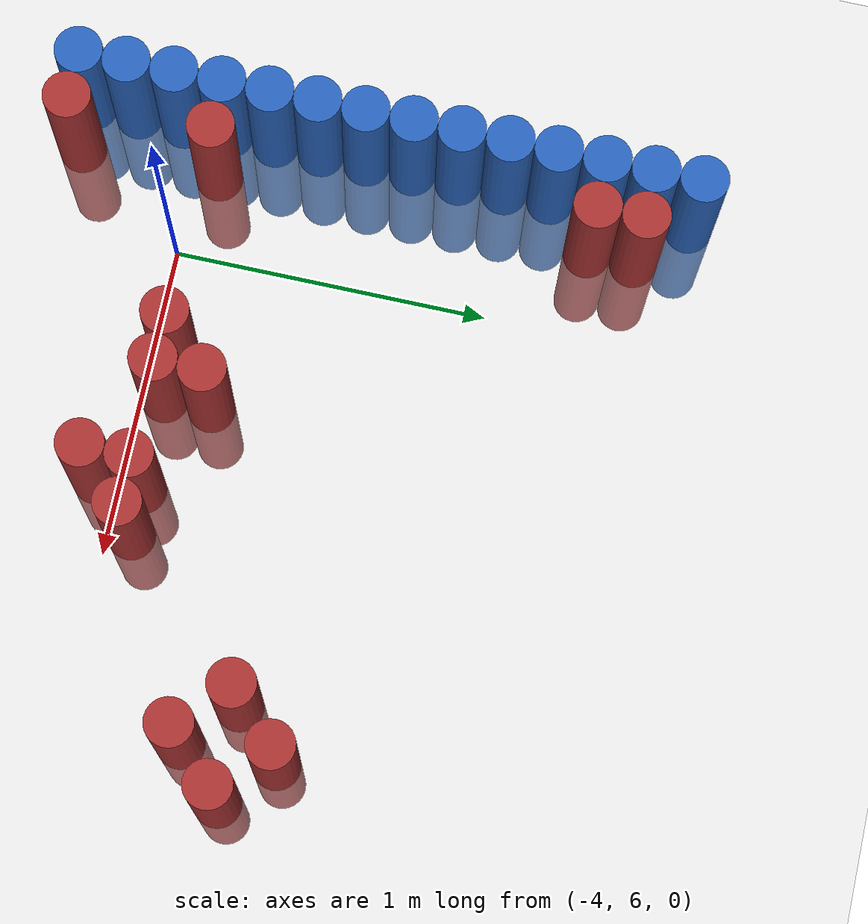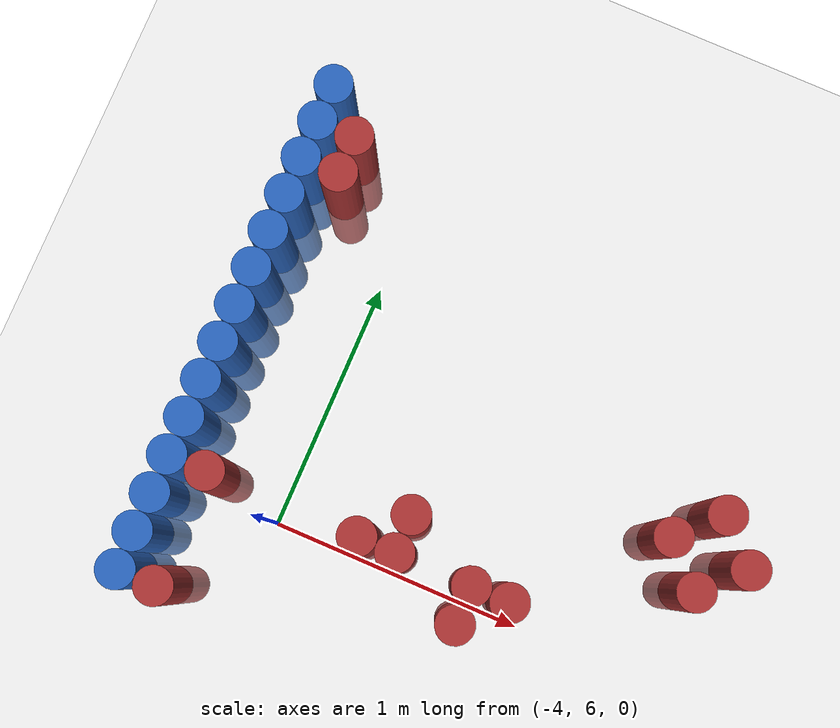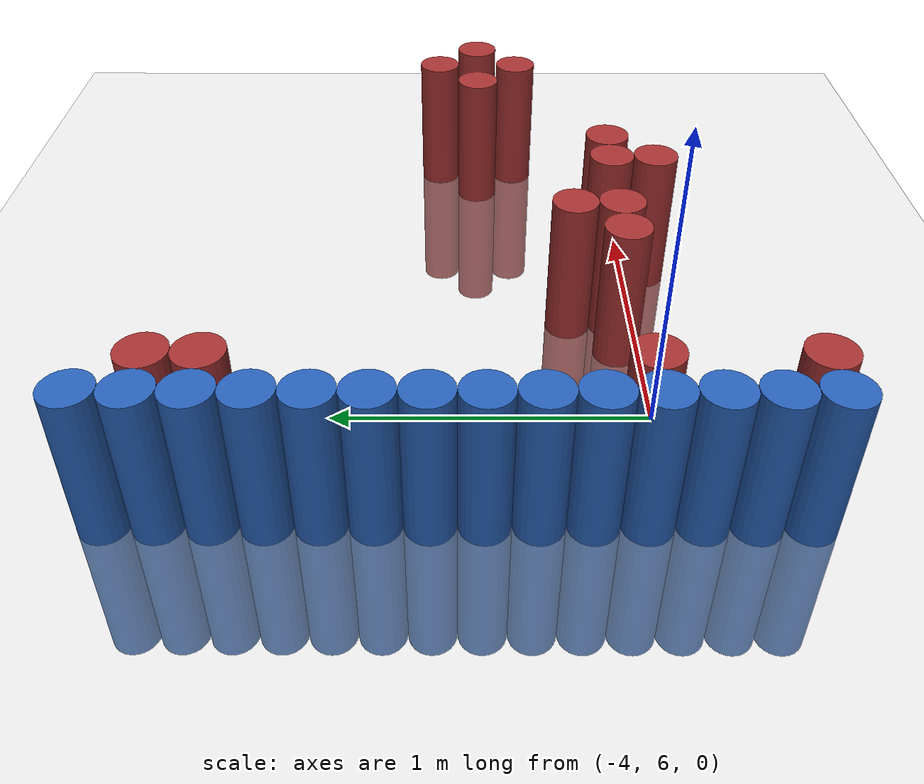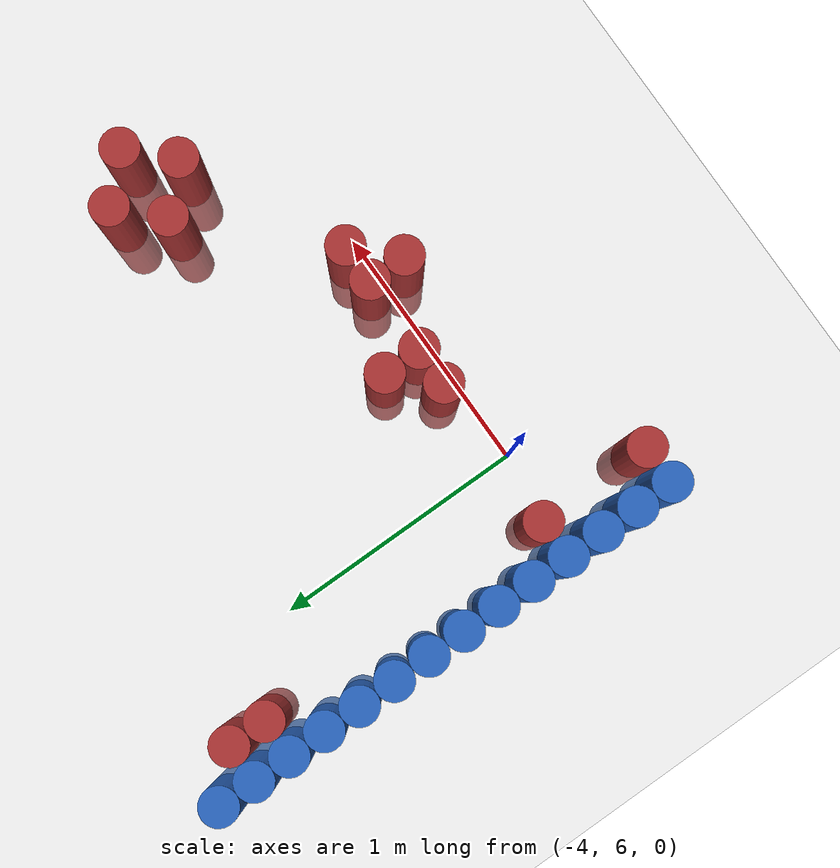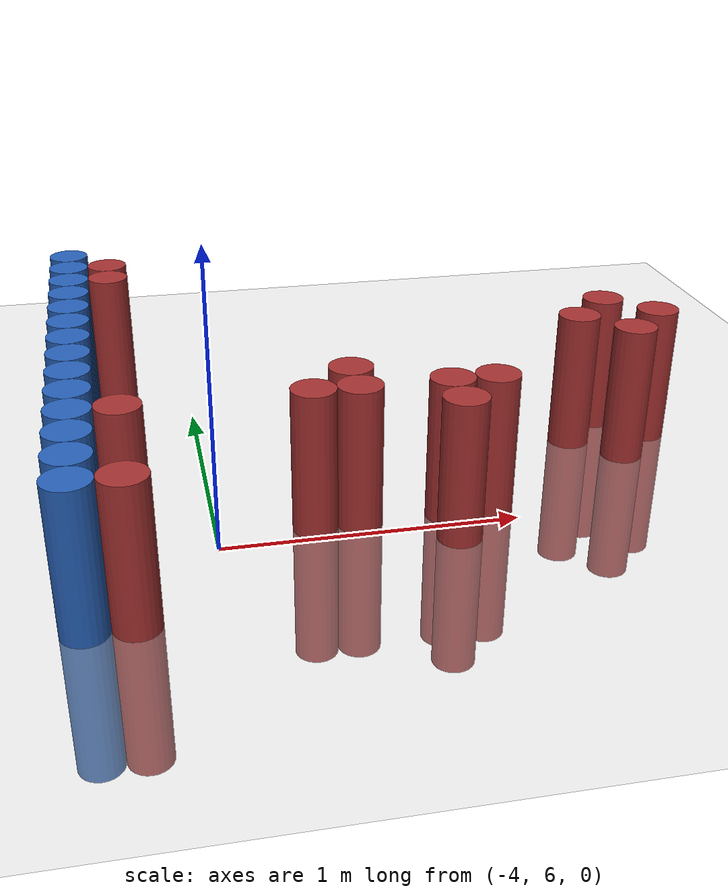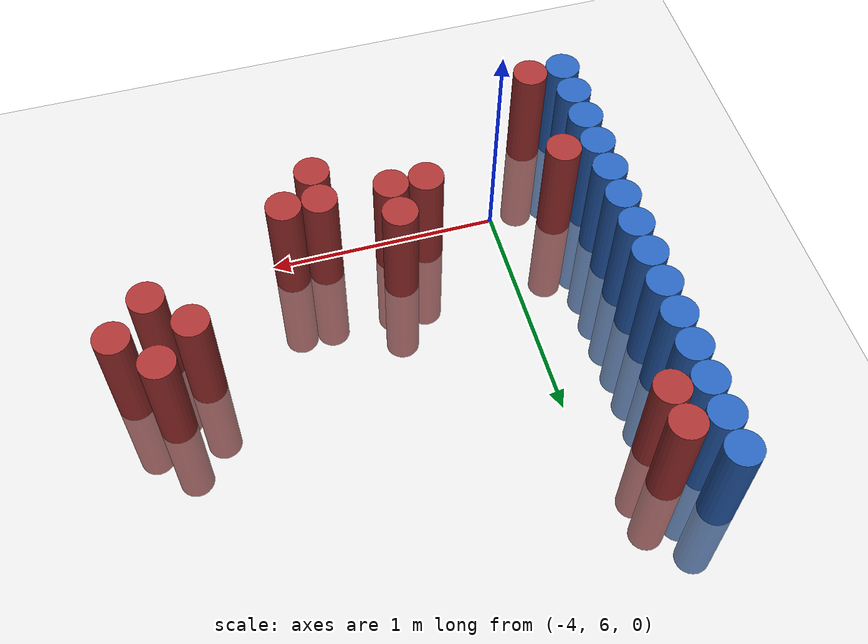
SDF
<sdf version="1.6">
 <world name="default">
  <model name="ground_plane">
   <static>1</static>
   <link name="link">
    <collision name="collision">
     <geometry><plane><normal>0 0 1</normal><size>100 100</size></plane></geometry>
     <surface><friction><ode><mu>100</mu><mu2>50</mu2></ode></friction></surface>
    </collision>
    <visual name="visual">
     <cast_shadows>0</cast_shadows>
     <geometry><plane><normal>0 0 1</normal><size>100 100</size></plane></geometry>
     <material>
      <script><uri>file://media/materials/scripts/gazebo.material</uri><name>Gazebo/Grey</name></script>
     </material>
    </visual>
   </link>
  </model>
  <model name="unit_cylinder_99">
   <static>1</static>
   <pose>-4.425000 5.625000 0.000000 0.000000 0.000000 0.000000</pose>
   <link name="link">
    <inertial>
     <mass>1</mass>
     <inertia><ixx>0.145833</ixx><ixy>0</ixy><ixz>0</ixz><iyy>0.145833</iyy><iyz>0</iyz><izz>0.125</izz></inertia>
    </inertial>
    <collision name="collision">
     <geometry><cylinder><radius>0.075000</radius><length>1</length></cylinder></geometry>
    </collision>
    <visual name="visual">
     <geometry><cylinder><radius>0.075000</radius><length>1</length></cylinder></geometry>
     <material>
      <ambient>0.152000 0.379000 0.720000 1</ambient>
      <diffuse>0.152000 0.379000 0.720000 1</diffuse>
     </material>
     <material>
      <script><name>Gazebo/Grey</name><uri>file://media/materials/scripts/gazebo.material</uri></script>
     </material>
    </visual>
   </link>
  </model>
  <model name="unit_cylinder_100">
   <static>1</static>
   <pose>-4.425000 5.775000 0.000000 0.000000 0.000000 0.000000</pose>
   <link name="link">
    <inertial>
     <mass>1</mass>
     <inertia><ixx>0.145833</ixx><ixy>0</ixy><ixz>0</ixz><iyy>0.145833</iyy><iyz>0</iyz><izz>0.125</izz></inertia>
    </inertial>
    <collision name="collision">
     <geometry><cylinder><radius>0.075000</radius><length>1</length></cylinder></geometry>
    </collision>
    <visual name="visual">
     <geometry><cylinder><radius>0.075000</radius><length>1</length></cylinder></geometry>
     <material>
      <ambient>0.152000 0.379000 0.720000 1</ambient>
      <diffuse>0.152000 0.379000 0.720000 1</diffuse>
     </material>
     <material>
      <script><name>Gazebo/Grey</name><uri>file://media/materials/scripts/gazebo.material</uri></script>
     </material>
    </visual>
   </link>
  </model>
  <model name="unit_cylinder_101">
   <static>1</static>
   <pose>-4.425000 5.925000 0.000000 0.000000 0.000000 0.000000</pose>
   <link name="link">
    <inertial>
     <mass>1</mass>
     <inertia><ixx>0.145833</ixx><ixy>0</ixy><ixz>0</ixz><iyy>0.145833</iyy><iyz>0</iyz><izz>0.125</izz></inertia>
    </inertial>
    <collision name="collision">
     <geometry><cylinder><radius>0.075000</radius><length>1</length></cylinder></geometry>
    </collision>
    <visual name="visual">
     <geometry><cylinder><radius>0.075000</radius><length>1</length></cylinder></geometry>
     <material>
      <ambient>0.152000 0.379000 0.720000 1</ambient>
      <diffuse>0.152000 0.379000 0.720000 1</diffuse>
     </material>
     <material>
      <script><name>Gazebo/Grey</name><uri>file://media/materials/scripts/gazebo.material</uri></script>
     </material>
    </visual>
   </link>
  </model>
  <model name="unit_cylinder_102">
   <static>1</static>
   <pose>-4.425000 6.075000 0.000000 0.000000 0.000000 0.000000</pose>
   <link name="link">
    <inertial>
     <mass>1</mass>
     <inertia><ixx>0.145833</ixx><ixy>0</ixy><ixz>0</ixz><iyy>0.145833</iyy><iyz>0</iyz><izz>0.125</izz></inertia>
    </inertial>
    <collision name="collision">
     <geometry><cylinder><radius>0.075000</radius><length>1</length></cylinder></geometry>
    </collision>
    <visual name="visual">
     <geometry><cylinder><radius>0.075000</radius><length>1</length></cylinder></geometry>
     <material>
      <ambient>0.152000 0.379000 0.720000 1</ambient>
      <diffuse>0.152000 0.379000 0.720000 1</diffuse>
     </material>
     <material>
      <script><name>Gazebo/Grey</name><uri>file://media/materials/scripts/gazebo.material</uri></script>
     </material>
    </visual>
   </link>
  </model>
  <model name="unit_cylinder_103">
   <static>1</static>
   <pose>-4.425000 6.225000 0.000000 0.000000 0.000000 0.000000</pose>
   <link name="link">
    <inertial>
     <mass>1</mass>
     <inertia><ixx>0.145833</ixx><ixy>0</ixy><ixz>0</ixz><iyy>0.145833</iyy><iyz>0</iyz><izz>0.125</izz></inertia>
    </inertial>
    <collision name="collision">
     <geometry><cylinder><radius>0.075000</radius><length>1</length></cylinder></geometry>
    </collision>
    <visual name="visual">
     <geometry><cylinder><radius>0.075000</radius><length>1</length></cylinder></geometry>
     <material>
      <ambient>0.152000 0.379000 0.720000 1</ambient>
      <diffuse>0.152000 0.379000 0.720000 1</diffuse>
     </material>
     <material>
      <script><name>Gazebo/Grey</name><uri>file://media/materials/scripts/gazebo.material</uri></script>
     </material>
    </visual>
   </link>
  </model>
  <model name="unit_cylinder_104">
   <static>1</static>
   <pose>-4.425000 6.375000 0.000000 0.000000 0.000000 0.000000</pose>
   <link name="link">
    <inertial>
     <mass>1</mass>
     <inertia><ixx>0.145833</ixx><ixy>0</ixy><ixz>0</ixz><iyy>0.145833</iyy><iyz>0</iyz><izz>0.125</izz></inertia>
    </inertial>
    <collision name="collision">
     <geometry><cylinder><radius>0.075000</radius><length>1</length></cylinder></geometry>
    </collision>
    <visual name="visual">
     <geometry><cylinder><radius>0.075000</radius><length>1</length></cylinder></geometry>
     <material>
      <ambient>0.152000 0.379000 0.720000 1</ambient>
      <diffuse>0.152000 0.379000 0.720000 1</diffuse>
     </material>
     <material>
      <script><name>Gazebo/Grey</name><uri>file://media/materials/scripts/gazebo.material</uri></script>
     </material>
    </visual>
   </link>
  </model>
  <model name="unit_cylinder_105">
   <static>1</static>
   <pose>-4.425000 6.525000 0.000000 0.000000 0.000000 0.000000</pose>
   <link name="link">
    <inertial>
     <mass>1</mass>
     <inertia><ixx>0.145833</ixx><ixy>0</ixy><ixz>0</ixz><iyy>0.145833</iyy><iyz>0</iyz><izz>0.125</izz></inertia>
    </inertial>
    <collision name="collision">
     <geometry><cylinder><radius>0.075000</radius><length>1</length></cylinder></geometry>
    </collision>
    <visual name="visual">
     <geometry><cylinder><radius>0.075000</radius><length>1</length></cylinder></geometry>
     <material>
      <ambient>0.152000 0.379000 0.720000 1</ambient>
      <diffuse>0.152000 0.379000 0.720000 1</diffuse>
     </material>
     <material>
      <script><name>Gazebo/Grey</name><uri>file://media/materials/scripts/gazebo.material</uri></script>
     </material>
    </visual>
   </link>
  </model>
  <model name="unit_cylinder_106">
   <static>1</static>
   <pose>-4.425000 6.675000 0.000000 0.000000 0.000000 0.000000</pose>
   <link name="link">
    <inertial>
     <mass>1</mass>
     <inertia><ixx>0.145833</ixx><ixy>0</ixy><ixz>0</ixz><iyy>0.145833</iyy><iyz>0</iyz><izz>0.125</izz></inertia>
    </inertial>
    <collision name="collision">
     <geometry><cylinder><radius>0.075000</radius><length>1</length></cylinder></geometry>
    </collision>
    <visual name="visual">
     <geometry><cylinder><radius>0.075000</radius><length>1</length></cylinder></geometry>
     <material>
      <ambient>0.152000 0.379000 0.720000 1</ambient>
      <diffuse>0.152000 0.379000 0.720000 1</diffuse>
     </material>
     <material>
      <script><name>Gazebo/Grey</name><uri>file://media/materials/scripts/gazebo.material</uri></script>
     </material>
    </visual>
   </link>
  </model>
  <model name="unit_cylinder_107">
   <static>1</static>
   <pose>-4.425000 6.825000 0.000000 0.000000 0.000000 0.000000</pose>
   <link name="link">
    <inertial>
     <mass>1</mass>
     <inertia><ixx>0.145833</ixx><ixy>0</ixy><ixz>0</ixz><iyy>0.145833</iyy><iyz>0</iyz><izz>0.125</izz></inertia>
    </inertial>
    <collision name="collision">
     <geometry><cylinder><radius>0.075000</radius><length>1</length></cylinder></geometry>
    </collision>
    <visual name="visual">
     <geometry><cylinder><radius>0.075000</radius><length>1</length></cylinder></geometry>
     <material>
      <ambient>0.152000 0.379000 0.720000 1</ambient>
      <diffuse>0.152000 0.379000 0.720000 1</diffuse>
     </material>
     <material>
      <script><name>Gazebo/Grey</name><uri>file://media/materials/scripts/gazebo.material</uri></script>
     </material>
    </visual>
   </link>
  </model>
  <model name="unit_cylinder_108">
   <static>1</static>
   <pose>-4.425000 6.975000 0.000000 0.000000 0.000000 0.000000</pose>
   <link name="link">
    <inertial>
     <mass>1</mass>
     <inertia><ixx>0.145833</ixx><ixy>0</ixy><ixz>0</ixz><iyy>0.145833</iyy><iyz>0</iyz><izz>0.125</izz></inertia>
    </inertial>
    <collision name="collision">
     <geometry><cylinder><radius>0.075000</radius><length>1</length></cylinder></geometry>
    </collision>
    <visual name="visual">
     <geometry><cylinder><radius>0.075000</radius><length>1</length></cylinder></geometry>
     <material>
      <ambient>0.152000 0.379000 0.720000 1</ambient>
      <diffuse>0.152000 0.379000 0.720000 1</diffuse>
     </material>
     <material>
      <script><name>Gazebo/Grey</name><uri>file://media/materials/scripts/gazebo.material</uri></script>
     </material>
    </visual>
   </link>
  </model>
  <model name="unit_cylinder_109">
   <static>1</static>
   <pose>-4.425000 7.125000 0.000000 0.000000 0.000000 0.000000</pose>
   <link name="link">
    <inertial>
     <mass>1</mass>
     <inertia><ixx>0.145833</ixx><ixy>0</ixy><ixz>0</ixz><iyy>0.145833</iyy><iyz>0</iyz><izz>0.125</izz></inertia>
    </inertial>
    <collision name="collision">
     <geometry><cylinder><radius>0.075000</radius><length>1</length></cylinder></geometry>
    </collision>
    <visual name="visual">
     <geometry><cylinder><radius>0.075000</radius><length>1</length></cylinder></geometry>
     <material>
      <ambient>0.152000 0.379000 0.720000 1</ambient>
      <diffuse>0.152000 0.379000 0.720000 1</diffuse>
     </material>
     <material>
      <script><name>Gazebo/Grey</name><uri>file://media/materials/scripts/gazebo.material</uri></script>
     </material>
    </visual>
   </link>
  </model>
  <model name="unit_cylinder_110">
   <static>1</static>
   <pose>-4.425000 7.275000 0.000000 0.000000 0.000000 0.000000</pose>
   <link name="link">
    <inertial>
     <mass>1</mass>
     <inertia><ixx>0.145833</ixx><ixy>0</ixy><ixz>0</ixz><iyy>0.145833</iyy><iyz>0</iyz><izz>0.125</izz></inertia>
    </inertial>
    <collision name="collision">
     <geometry><cylinder><radius>0.075000</radius><length>1</length></cylinder></geometry>
    </collision>
    <visual name="visual">
     <geometry><cylinder><radius>0.075000</radius><length>1</length></cylinder></geometry>
     <material>
      <ambient>0.152000 0.379000 0.720000 1</ambient>
      <diffuse>0.152000 0.379000 0.720000 1</diffuse>
     </material>
     <material>
      <script><name>Gazebo/Grey</name><uri>file://media/materials/scripts/gazebo.material</uri></script>
     </material>
    </visual>
   </link>
  </model>
  <model name="unit_cylinder_111">
   <static>1</static>
   <pose>-4.425000 7.425000 0.000000 0.000000 0.000000 0.000000</pose>
   <link name="link">
    <inertial>
     <mass>1</mass>
     <inertia><ixx>0.145833</ixx><ixy>0</ixy><ixz>0</ixz><iyy>0.145833</iyy><iyz>0</iyz><izz>0.125</izz></inertia>
    </inertial>
    <collision name="collision">
     <geometry><cylinder><radius>0.075000</radius><length>1</length></cylinder></geometry>
    </collision>
    <visual name="visual">
     <geometry><cylinder><radius>0.075000</radius><length>1</length></cylinder></geometry>
     <material>
      <ambient>0.152000 0.379000 0.720000 1</ambient>
      <diffuse>0.152000 0.379000 0.720000 1</diffuse>
     </material>
     <material>
      <script><name>Gazebo/Grey</name><uri>file://media/materials/scripts/gazebo.material</uri></script>
     </material>
    </visual>
   </link>
  </model>
  <model name="unit_cylinder_112">
   <static>1</static>
   <pose>-4.425000 7.575000 0.000000 0.000000 0.000000 0.000000</pose>
   <link name="link">
    <inertial>
     <mass>1</mass>
     <inertia><ixx>0.145833</ixx><ixy>0</ixy><ixz>0</ixz><iyy>0.145833</iyy><iyz>0</iyz><izz>0.125</izz></inertia>
    </inertial>
    <collision name="collision">
     <geometry><cylinder><radius>0.075000</radius><length>1</length></cylinder></geometry>
    </collision>
    <visual name="visual">
     <geometry><cylinder><radius>0.075000</radius><length>1</length></cylinder></geometry>
     <material>
      <ambient>0.152000 0.379000 0.720000 1</ambient>
      <diffuse>0.152000 0.379000 0.720000 1</diffuse>
     </material>
     <material>
      <script><name>Gazebo/Grey</name><uri>file://media/materials/scripts/gazebo.material</uri></script>
     </material>
    </visual>
   </link>
  </model>
  <model name="unit_cylinder_128">
   <static>1</static>
   <pose>-4.275000 5.625000 0.000000 0.000000 0.000000 0.000000</pose>
   <link name="link">
    <inertial>
     <mass>1</mass>
     <inertia><ixx>0.145833</ixx><ixy>0</ixy><ixz>0</ixz><iyy>0.145833</iyy><iyz>0</iyz><izz>0.125</izz></inertia>
    </inertial>
    <collision name="collision">
     <geometry><cylinder><radius>0.075000</radius><length>1</length></cylinder></geometry>
    </collision>
    <visual name="visual">
     <geometry><cylinder><radius>0.075000</radius><length>1</length></cylinder></geometry>
     <material>
      <ambient>0.648000 0.192000 0.192000 1</ambient>
      <diffuse>0.648000 0.192000 0.192000 1</diffuse>
     </material>
     <material>
      <script><name>Gazebo/Grey</name><uri>file://media/materials/scripts/gazebo.material</uri></script>
     </material>
    </visual>
   </link>
  </model>
  <model name="unit_cylinder_129">
   <static>1</static>
   <pose>-4.275000 6.075000 0.000000 0.000000 0.000000 0.000000</pose>
   <link name="link">
    <inertial>
     <mass>1</mass>
     <inertia><ixx>0.145833</ixx><ixy>0</ixy><ixz>0</ixz><iyy>0.145833</iyy><iyz>0</iyz><izz>0.125</izz></inertia>
    </inertial>
    <collision name="collision">
     <geometry><cylinder><radius>0.075000</radius><length>1</length></cylinder></geometry>
    </collision>
    <visual name="visual">
     <geometry><cylinder><radius>0.075000</radius><length>1</length></cylinder></geometry>
     <material>
      <ambient>0.648000 0.192000 0.192000 1</ambient>
      <diffuse>0.648000 0.192000 0.192000 1</diffuse>
     </material>
     <material>
      <script><name>Gazebo/Grey</name><uri>file://media/materials/scripts/gazebo.material</uri></script>
     </material>
    </visual>
   </link>
  </model>
  <model name="unit_cylinder_130">
   <static>1</static>
   <pose>-4.275000 7.275000 0.000000 0.000000 0.000000 0.000000</pose>
   <link name="link">
    <inertial>
     <mass>1</mass>
     <inertia><ixx>0.145833</ixx><ixy>0</ixy><ixz>0</ixz><iyy>0.145833</iyy><iyz>0</iyz><izz>0.125</izz></inertia>
    </inertial>
    <collision name="collision">
     <geometry><cylinder><radius>0.075000</radius><length>1</length></cylinder></geometry>
    </collision>
    <visual name="visual">
     <geometry><cylinder><radius>0.075000</radius><length>1</length></cylinder></geometry>
     <material>
      <ambient>0.648000 0.192000 0.192000 1</ambient>
      <diffuse>0.648000 0.192000 0.192000 1</diffuse>
     </material>
     <material>
      <script><name>Gazebo/Grey</name><uri>file://media/materials/scripts/gazebo.material</uri></script>
     </material>
    </visual>
   </link>
  </model>
  <model name="unit_cylinder_131">
   <static>1</static>
   <pose>-4.275000 7.425000 0.000000 0.000000 0.000000 0.000000</pose>
   <link name="link">
    <inertial>
     <mass>1</mass>
     <inertia><ixx>0.145833</ixx><ixy>0</ixy><ixz>0</ixz><iyy>0.145833</iyy><iyz>0</iyz><izz>0.125</izz></inertia>
    </inertial>
    <collision name="collision">
     <geometry><cylinder><radius>0.075000</radius><length>1</length></cylinder></geometry>
    </collision>
    <visual name="visual">
     <geometry><cylinder><radius>0.075000</radius><length>1</length></cylinder></geometry>
     <material>
      <ambient>0.648000 0.192000 0.192000 1</ambient>
      <diffuse>0.648000 0.192000 0.192000 1</diffuse>
     </material>
     <material>
      <script><name>Gazebo/Grey</name><uri>file://media/materials/scripts/gazebo.material</uri></script>
     </material>
    </visual>
   </link>
  </model>
  <model name="unit_cylinder_139">
   <static>1</static>
   <pose>-3.675000 6.075000 0.000000 0.000000 0.000000 0.000000</pose>
   <link name="link">
    <inertial>
     <mass>1</mass>
     <inertia><ixx>0.145833</ixx><ixy>0</ixy><ixz>0</ixz><iyy>0.145833</iyy><iyz>0</iyz><izz>0.125</izz></inertia>
    </inertial>
    <collision name="collision">
     <geometry><cylinder><radius>0.075000</radius><length>1</length></cylinder></geometry>
    </collision>
    <visual name="visual">
     <geometry><cylinder><radius>0.075000</radius><length>1</length></cylinder></geometry>
     <material>
      <ambient>0.648000 0.192000 0.192000 1</ambient>
      <diffuse>0.648000 0.192000 0.192000 1</diffuse>
     </material>
     <material>
      <script><name>Gazebo/Grey</name><uri>file://media/materials/scripts/gazebo.material</uri></script>
     </material>
    </visual>
   </link>
  </model>
  <model name="unit_cylinder_140">
   <static>1</static>
   <pose>-3.525000 6.075000 0.000000 0.000000 0.000000 0.000000</pose>
   <link name="link">
    <inertial>
     <mass>1</mass>
     <inertia><ixx>0.145833</ixx><ixy>0</ixy><ixz>0</ixz><iyy>0.145833</iyy><iyz>0</iyz><izz>0.125</izz></inertia>
    </inertial>
    <collision name="collision">
     <geometry><cylinder><radius>0.075000</radius><length>1</length></cylinder></geometry>
    </collision>
    <visual name="visual">
     <geometry><cylinder><radius>0.075000</radius><length>1</length></cylinder></geometry>
     <material>
      <ambient>0.648000 0.192000 0.192000 1</ambient>
      <diffuse>0.648000 0.192000 0.192000 1</diffuse>
     </material>
     <material>
      <script><name>Gazebo/Grey</name><uri>file://media/materials/scripts/gazebo.material</uri></script>
     </material>
    </visual>
   </link>
  </model>
  <model name="unit_cylinder_141">
   <static>1</static>
   <pose>-3.525000 6.225000 0.000000 0.000000 0.000000 0.000000</pose>
   <link name="link">
    <inertial>
     <mass>1</mass>
     <inertia><ixx>0.145833</ixx><ixy>0</ixy><ixz>0</ixz><iyy>0.145833</iyy><iyz>0</iyz><izz>0.125</izz></inertia>
    </inertial>
    <collision name="collision">
     <geometry><cylinder><radius>0.075000</radius><length>1</length></cylinder></geometry>
    </collision>
    <visual name="visual">
     <geometry><cylinder><radius>0.075000</radius><length>1</length></cylinder></geometry>
     <material>
      <ambient>0.648000 0.192000 0.192000 1</ambient>
      <diffuse>0.648000 0.192000 0.192000 1</diffuse>
     </material>
     <material>
      <script><name>Gazebo/Grey</name><uri>file://media/materials/scripts/gazebo.material</uri></script>
     </material>
    </visual>
   </link>
  </model>
  <model name="unit_cylinder_142">
   <static>1</static>
   <pose>-3.225000 5.925000 0.000000 0.000000 0.000000 0.000000</pose>
   <link name="link">
    <inertial>
     <mass>1</mass>
     <inertia><ixx>0.145833</ixx><ixy>0</ixy><ixz>0</ixz><iyy>0.145833</iyy><iyz>0</iyz><izz>0.125</izz></inertia>
    </inertial>
    <collision name="collision">
     <geometry><cylinder><radius>0.075000</radius><length>1</length></cylinder></geometry>
    </collision>
    <visual name="visual">
     <geometry><cylinder><radius>0.075000</radius><length>1</length></cylinder></geometry>
     <material>
      <ambient>0.648000 0.192000 0.192000 1</ambient>
      <diffuse>0.648000 0.192000 0.192000 1</diffuse>
     </material>
     <material>
      <script><name>Gazebo/Grey</name><uri>file://media/materials/scripts/gazebo.material</uri></script>
     </material>
    </visual>
   </link>
  </model>
  <model name="unit_cylinder_143">
   <static>1</static>
   <pose>-3.225000 6.075000 0.000000 0.000000 0.000000 0.000000</pose>
   <link name="link">
    <inertial>
     <mass>1</mass>
     <inertia><ixx>0.145833</ixx><ixy>0</ixy><ixz>0</ixz><iyy>0.145833</iyy><iyz>0</iyz><izz>0.125</izz></inertia>
    </inertial>
    <collision name="collision">
     <geometry><cylinder><radius>0.075000</radius><length>1</length></cylinder></geometry>
    </collision>
    <visual name="visual">
     <geometry><cylinder><radius>0.075000</radius><length>1</length></cylinder></geometry>
     <material>
      <ambient>0.648000 0.192000 0.192000 1</ambient>
      <diffuse>0.648000 0.192000 0.192000 1</diffuse>
     </material>
     <material>
      <script><name>Gazebo/Grey</name><uri>file://media/materials/scripts/gazebo.material</uri></script>
     </material>
    </visual>
   </link>
  </model>
  <model name="unit_cylinder_144">
   <static>1</static>
   <pose>-3.075000 6.075000 0.000000 0.000000 0.000000 0.000000</pose>
   <link name="link">
    <inertial>
     <mass>1</mass>
     <inertia><ixx>0.145833</ixx><ixy>0</ixy><ixz>0</ixz><iyy>0.145833</iyy><iyz>0</iyz><izz>0.125</izz></inertia>
    </inertial>
    <collision name="collision">
     <geometry><cylinder><radius>0.075000</radius><length>1</length></cylinder></geometry>
    </collision>
    <visual name="visual">
     <geometry><cylinder><radius>0.075000</radius><length>1</length></cylinder></geometry>
     <material>
      <ambient>0.648000 0.192000 0.192000 1</ambient>
      <diffuse>0.648000 0.192000 0.192000 1</diffuse>
     </material>
     <material>
      <script><name>Gazebo/Grey</name><uri>file://media/materials/scripts/gazebo.material</uri></script>
     </material>
    </visual>
   </link>
  </model>
  <model name="unit_cylinder_146">
   <static>1</static>
   <pose>-2.625000 6.525000 0.000000 0.000000 0.000000 0.000000</pose>
   <link name="link">
    <inertial>
     <mass>1</mass>
     <inertia><ixx>0.145833</ixx><ixy>0</ixy><ixz>0</ixz><iyy>0.145833</iyy><iyz>0</iyz><izz>0.125</izz></inertia>
    </inertial>
    <collision name="collision">
     <geometry><cylinder><radius>0.075000</radius><length>1</length></cylinder></geometry>
    </collision>
    <visual name="visual">
     <geometry><cylinder><radius>0.075000</radius><length>1</length></cylinder></geometry>
     <material>
      <ambient>0.648000 0.192000 0.192000 1</ambient>
      <diffuse>0.648000 0.192000 0.192000 1</diffuse>
     </material>
     <material>
      <script><name>Gazebo/Grey</name><uri>file://media/materials/scripts/gazebo.material</uri></script>
     </material>
    </visual>
   </link>
  </model>
  <model name="unit_cylinder_149">
   <static>1</static>
   <pose>-2.475000 6.375000 0.000000 0.000000 0.000000 0.000000</pose>
   <link name="link">
    <inertial>
     <mass>1</mass>
     <inertia><ixx>0.145833</ixx><ixy>0</ixy><ixz>0</ixz><iyy>0.145833</iyy><iyz>0</iyz><izz>0.125</izz></inertia>
    </inertial>
    <collision name="collision">
     <geometry><cylinder><radius>0.075000</radius><length>1</length></cylinder></geometry>
    </collision>
    <visual name="visual">
     <geometry><cylinder><radius>0.075000</radius><length>1</length></cylinder></geometry>
     <material>
      <ambient>0.648000 0.192000 0.192000 1</ambient>
      <diffuse>0.648000 0.192000 0.192000 1</diffuse>
     </material>
     <material>
      <script><name>Gazebo/Grey</name><uri>file://media/materials/scripts/gazebo.material</uri></script>
     </material>
    </visual>
   </link>
  </model>
  <model name="unit_cylinder_150">
   <static>1</static>
   <pose>-2.475000 6.675000 0.000000 0.000000 0.000000 0.000000</pose>
   <link name="link">
    <inertial>
     <mass>1</mass>
     <inertia><ixx>0.145833</ixx><ixy>0</ixy><ixz>0</ixz><iyy>0.145833</iyy><iyz>0</iyz><izz>0.125</izz></inertia>
    </inertial>
    <collision name="collision">
     <geometry><cylinder><radius>0.075000</radius><length>1</length></cylinder></geometry>
    </collision>
    <visual name="visual">
     <geometry><cylinder><radius>0.075000</radius><length>1</length></cylinder></geometry>
     <material>
      <ambient>0.648000 0.192000 0.192000 1</ambient>
      <diffuse>0.648000 0.192000 0.192000 1</diffuse>
     </material>
     <material>
      <script><name>Gazebo/Grey</name><uri>file://media/materials/scripts/gazebo.material</uri></script>
     </material>
    </visual>
   </link>
  </model>
  <model name="unit_cylinder_151">
   <static>1</static>
   <pose>-2.325000 6.525000 0.000000 0.000000 0.000000 0.000000</pose>
   <link name="link">
    <inertial>
     <mass>1</mass>
     <inertia><ixx>0.145833</ixx><ixy>0</ixy><ixz>0</ixz><iyy>0.145833</iyy><iyz>0</iyz><izz>0.125</izz></inertia>
    </inertial>
    <collision name="collision">
     <geometry><cylinder><radius>0.075000</radius><length>1</length></cylinder></geometry>
    </collision>
    <visual name="visual">
     <geometry><cylinder><radius>0.075000</radius><length>1</length></cylinder></geometry>
     <material>
      <ambient>0.648000 0.192000 0.192000 1</ambient>
      <diffuse>0.648000 0.192000 0.192000 1</diffuse>
     </material>
     <material>
      <script><name>Gazebo/Grey</name><uri>file://media/materials/scripts/gazebo.material</uri></script>
     </material>
    </visual>
   </link>
  </model>
 </world>
</sdf>
